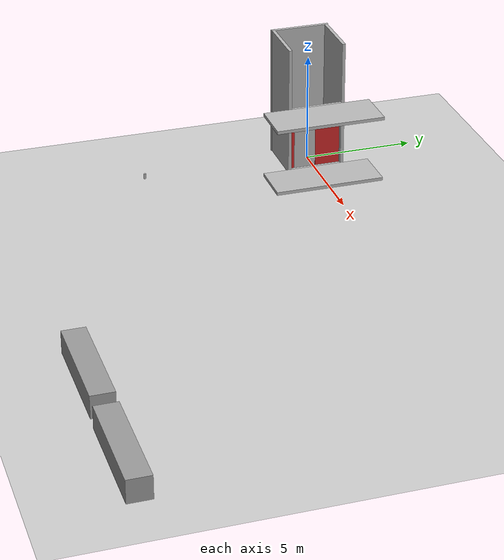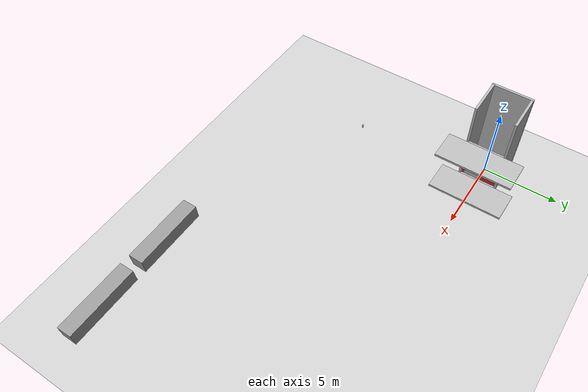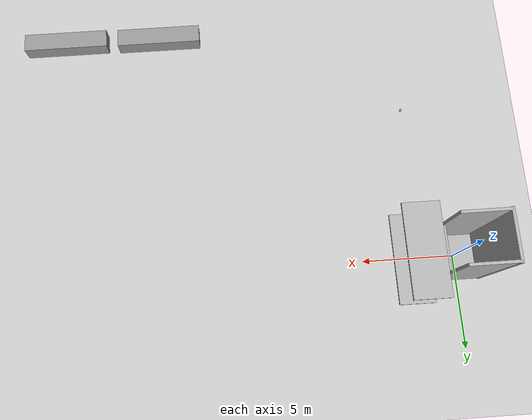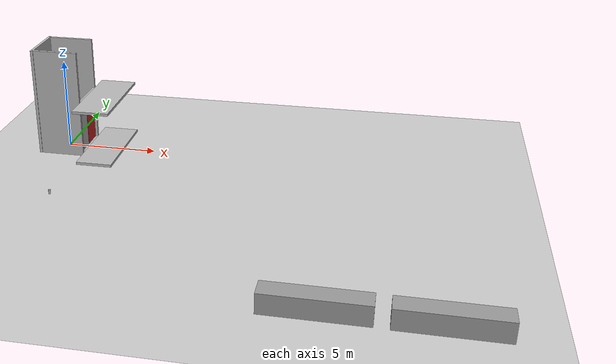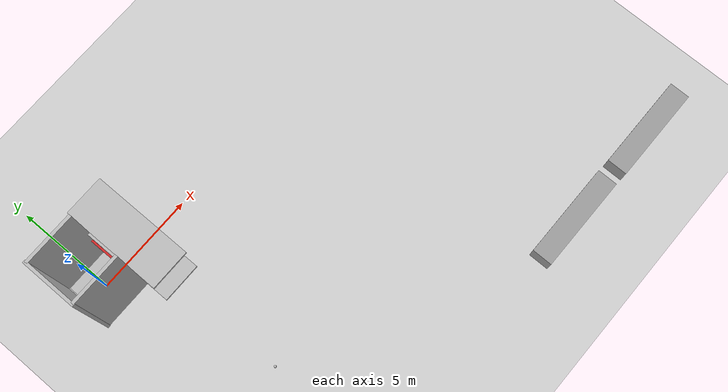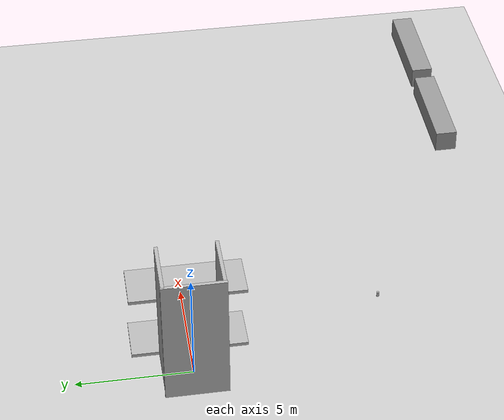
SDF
<sdf version="1.7">
 <world name="default">
  <model name="my_ground_plane">
   <static>1</static>
   <link name="link">
    <collision name="collision">
     <geometry><plane><normal>0 0 1</normal><size>6 6</size></plane></geometry>
     <surface><friction><ode><mu2>1</mu2><mu1>1</mu1></ode></friction></surface>
    </collision>
    <visual name="visual">
     <geometry><plane><normal>0 0 1</normal><size>46 46</size></plane></geometry>
     <cast_shadows>0</cast_shadows>
     <material>
      <script>
       <uri>model://my_ground_plane/materials/scripts</uri>
       <uri>model://my_ground_plane/materials/textures</uri>
       <name>MyGroundPlane/Texture1</name>
      </script>
     </material>
    </visual>
   </link>
   <pose>2.78178 3.19727 0 0 -0 0</pose>
  </model>
  <model name="beer">
   <link name="link">
    <pose>0 0 0.115 0 -0 0</pose>
    <inertial>
     <mass>0.39</mass>
     <inertia><ixx>0.00058</ixx><ixy>0</ixy><ixz>0</ixz><iyy>0.00058</iyy><iyz>0</iyz><izz>0.00019</izz></inertia>
    </inertial>
    <collision name="collision">
     <geometry><cylinder><radius>0.055</radius><length>0.23</length></cylinder></geometry>
    </collision>
    <visual name="visual">
     <geometry><cylinder><radius>0.055</radius><length>0.23</length></cylinder></geometry>
     <material>
      <script>
       <uri>model://beer/materials/scripts</uri>
       <uri>model://beer/materials/textures</uri>
       <name>Beer/Diffuse</name>
      </script>
     </material>
    </visual>
   </link>
   <pose>2.13177 -8.25354 1.19999 -1.6e-05 -5.1e-05 -0.000173</pose>
  </model>
  <model name="unit_box">
   <pose>21.1635 -14.0646 0.498243 -0 0.000732 -1e-05</pose>
   <link name="link">
    <inertial>
     <mass>1</mass>
     <inertia>
      <ixx>0.166667</ixx>
      <ixy>0</ixy>
      <ixz>0</ixz>
      <iyy>0.166667</iyy>
      <iyz>0</iyz>
      <izz>0.166667</izz>
     </inertia>
    </inertial>
    <collision name="collision"><geometry><box><size>4.79843 1 1</size></box></geometry></collision>
    <visual name="visual">
     <geometry><box><size>4.79843 1 1</size></box></geometry>
     <material>
      <script><name>Gazebo/Grey</name><uri>file://media/materials/scripts/gazebo.material</uri></script>
     </material>
    </visual>
   </link>
  </model>
  <model name="unit_box_clone">
   <pose>15.7068 -14.0256 0.5 0 -0 7.9e-05</pose>
   <link name="link">
    <inertial>
     <mass>1</mass>
     <inertia>
      <ixx>0.166667</ixx>
      <ixy>0</ixy>
      <ixz>0</ixz>
      <iyy>0.166667</iyy>
      <iyz>0</iyz>
      <izz>0.166667</izz>
     </inertia>
    </inertial>
    <collision name="collision"><geometry><box><size>4.79843 1 1</size></box></geometry></collision>
    <visual name="visual">
     <geometry><box><size>4.79843 1 1</size></box></geometry>
     <material>
      <script><name>Gazebo/Grey</name><uri>file://media/materials/scripts/gazebo.material</uri></script>
     </material>
    </visual>
   </link>
  </model>
  <model name="elevator">
   <pose>0 0 0.075 0 0 0</pose>
   <link name="link">
    <inertial><mass>800</mass></inertial>
    <collision name="floor_collision"><geometry><box><size>2.25 2.25 0.15</size></box></geometry></collision>
    <visual name="floor_visual"><geometry><box><size>2.25 2.25 0.15</size></box></geometry></visual>
    <collision name="wall1_collision">
     <pose>1.0745 0.5725 1.125 0 0 0</pose>
     <geometry><box><size>0.1 1.15 2.25</size></box></geometry>
    </collision>
    <visual name="wall1_visual">
     <pose>1.0745 0.5725 1.125 0 0 0</pose>
     <geometry><box><size>0.1 1.15 2.25</size></box></geometry>
     <material><script><name>Gazebo/Red</name></script></material>
    </visual>
    <collision name="wall2_collision">
     <pose>1.0745 -1.0625 1.125 0 0 0</pose>
     <geometry><box><size>0.1 0.125 2.25</size></box></geometry>
    </collision>
    <visual name="wall2_visual">
     <pose>1.0745 -1.0625 1.125 0 0 0</pose>
     <geometry><box><size>0.1 0.125 2.25</size></box></geometry>
     <material><script><name>Gazebo/Red</name></script></material>
    </visual>
   </link>
   <link name="door">
    <pose>1.0745 -0.5 1.125 0 0 0</pose>
    <collision name="collision"><geometry><box><size>0.08 1.0 2.25</size></box></geometry></collision>
    <visual name="visual"><geometry><box><size>0.08 1.0 2.25</size></box></geometry></visual>
   </link>
   <joint name="door" type="prismatic">
    <parent>link</parent>
    <child>door</child>
    <axis>
     <xyz>0 1 0</xyz>
     <limit><lower>0</lower><upper>1</upper><effort>10</effort></limit>
     <dynamics><damping>2</damping></dynamics>
    </axis>
   </joint>
   <joint name="lift" type="prismatic">
    <parent>world</parent>
    <child>link</child>
    <axis>
     <xyz>0 0 1</xyz>
     <limit><lower>0</lower><upper>10</upper><effort>100000</effort></limit>
     <dynamics><damping>50</damping></dynamics>
    </axis>
    <physics><ode><implicit_spring_damper>1</implicit_spring_damper></ode></physics>
   </joint>
   <plugin filename="libElevatorPlugin.so" name="elevator_plugin">
    <lift_joint>elevator::lift</lift_joint>
    <door_joint>elevator::door</door_joint>
    <floor_height>3.075</floor_height>
    <door_wait_time>10</door_wait_time>
    <topic>~/elevator</topic>
   </plugin>
  </model>
  <model name="elevator_shaft">
   <static>true</static>
   <link name="link">
    <collision name="shaft_wall1_collision">
     <pose>0 1.25 3 0 0 0</pose>
     <geometry><box><size>2.5 0.15 6</size></box></geometry>
    </collision>
    <visual name="shaft_wall1_visual">
     <pose>0 1.25 3 0 0 0</pose>
     <geometry><box><size>2.5 0.15 6</size></box></geometry>
    </visual>
    <collision name="shaft_wall2_collision">
     <pose>0 -1.25 3 0 0 0</pose>
     <geometry><box><size>2.5 0.15 6</size></box></geometry>
    </collision>
    <visual name="shaft_wall2_visual">
     <pose>0 -1.25 3 0 0 0</pose>
     <geometry><box><size>2.5 0.15 6</size></box></geometry>
    </visual>
    <collision name="shaft_wall3_collision">
     <pose>-1.25 0 3 0 0 0</pose>
     <geometry><box><size>0.15 2.7 6</size></box></geometry>
    </collision>
    <visual name="shaft_wall3_visual">
     <pose>-1.25 0 3 0 0 0</pose>
     <geometry><box><size>0.15 2.7 6</size></box></geometry>
    </visual>
    <collision name="floor0_collision">
     <pose>1.19 0 0.075 0 0 0</pose>
     <geometry><box><size>0.12 2.5 0.15</size></box></geometry>
    </collision>
    <visual name="floor0_visual">
     <pose>1.19 0 0.075 0 0 0</pose>
     <geometry><box><size>0.12 2.5 0.15</size></box></geometry>
    </visual>
    <collision name="floor1_collision">
     <pose>1.19 0 3.075 0 0 0</pose>
     <geometry><box><size>0.12 2.5 0.15</size></box></geometry>
    </collision>
    <visual name="floor1_visual">
     <pose>1.19 0 3.075 0 0 0</pose>
     <geometry><box><size>0.12 2.5 0.15</size></box></geometry>
    </visual>
   </link>
  </model>
  <model name="floor0">
   <pose>2.25 0 0.075 0 0 0</pose>
   <static>true</static>
   <link name="link">
    <collision name="floor_collision"><geometry><box><size>2.0 5.0 0.15</size></box></geometry></collision>
    <visual name="floor_visual"><geometry><box><size>2.0 5.0 0.15</size></box></geometry></visual>
   </link>
  </model>
  <model name="floor1">
   <pose>2.25 0 3.075 0 0 0</pose>
   <static>true</static>
   <link name="link">
    <collision name="floor_collision"><geometry><box><size>2.0 5.0 0.15</size></box></geometry></collision>
    <visual name="floor_visual"><geometry><box><size>2.0 5.0 0.15</size></box></geometry></visual>
   </link>
  </model>
 </world>
</sdf>
